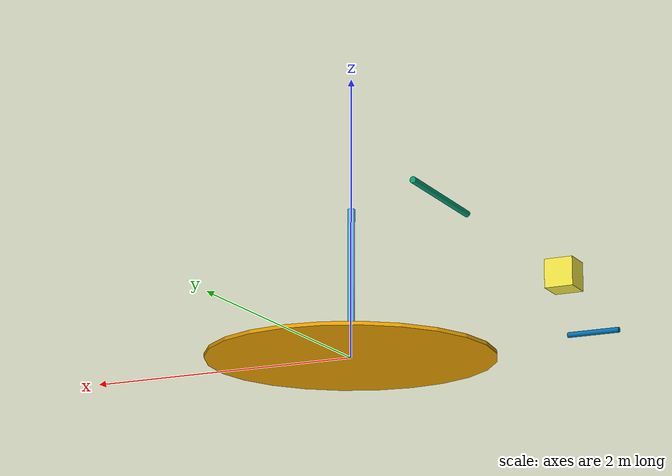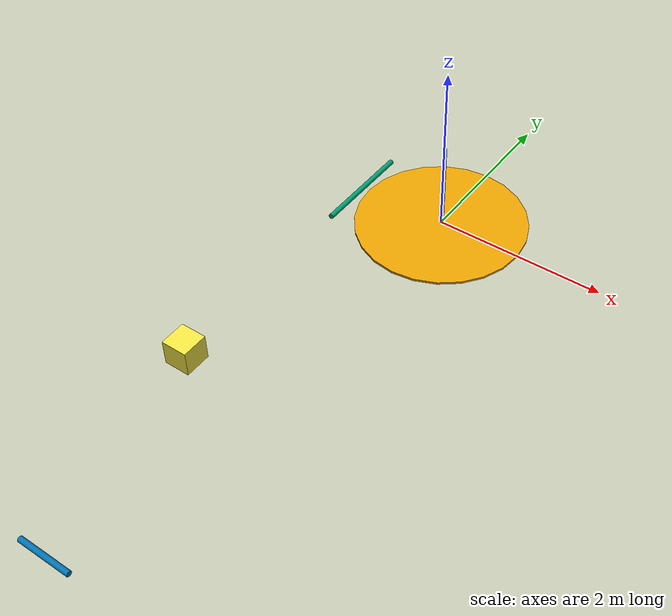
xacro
<?xml version="1.0"?>
<robot name="scara">

  <link name="base_link">
    <visual>
      <geometry>
        <cylinder length="0.025" radius="1"/>
      </geometry>
    </visual>
    <collision>
      <geometry>
        <cylinder length="0.025" radius="1"/>
      </geometry>
    </collision>
  </link>

  <transmission name="base_motor_trans">
    <type>transmission_interface/SimpleTransmission</type>
    <actuator name="base_swivel_motor">
      <mechanicalReduction>1</mechanicalReduction>
    </actuator>
    <joint name="base_to_L1">
      <hardwareInterface>hardware_interface/PositionJointInterface</hardwareInterface>
    </joint>
  </transmission>

  <joint name="base_to_L1" type="revolute">
    <parent link="base_link"/>
    <child link="L1"/>
    <axis xyz="0 0 1"/>
    <origin xyz="0 0 0.025"/>
    <limit effort="30" velocity="1.0"/>
  </joint>

  <link name="L1">
    <visual>
      <geometry>
        <cylinder length="1" radius="0.025"/>
      </geometry>
      <origin rpy="0 0 0" xyz="0 0 0.525"/>
    </visual>
    <collision>
      <geometry>
        <cylinder length="1" radius="0.025"/>
      </geometry>
    </collision>
  </link>

  <transmission name="elbow_motor_trans">
    <type>transmission_interface/SimpleTransmission</type>
    <actuator name="elbow_swivel_motor">
      <mechanicalReduction>1</mechanicalReduction>
    </actuator>
    <joint name="L1_to_L2">
      <hardwareInterface>hardware_interface/PositionJointInterface</hardwareInterface>
    </joint>
  </transmission>

  <joint name="L1_to_L2" type="revolute">
    <parent link="L1"/>
    <child link="L2"/>
    <axis xyz="1 0 0"/>
    <origin rpy="1.5707 0 0" xyz="0 0 1.525"/>
    <limit effort="30" velocity="1.0"/>
  </joint>

  <link name="L2">
    <visual>
      <geometry>
        <cylinder length="1" radius="0.025"/>
      </geometry>
      <origin rpy="0 0 0" xyz="0 0 1.525"/>
    </visual>
    <collision>
      <geometry>
        <cylinder length="1" radius="0.025"/>
      </geometry>
    </collision>
  </link>

  <joint name="L2_to_L3" type="fixed">
    <parent link="L2"/>
    <child link="L3"/>
    <origin rpy="0 0 0" xyz="0 0 2.025"/>
  </joint>

  <link name="L3">
    <visual>
      <geometry>
        <box size="0.25 0.25 0.25"/>
      </geometry>
      <origin rpy="0 0 0" xyz="0 0 2.0375"/>
    </visual>
  </link>

  <joint name="L3_to_end_effector" type="prismatic">
    <parent link="L3"/>
    <child link="end_effector"/>
    <axis xyz="1 0 0"/>
    <origin rpy="0 0 0" xyz="0.25 0 2.0375"/>
    <limit effort="30" velocity="1.0"/>
  </joint>

  <link name="end_effector">
    <visual>
      <geometry>
        <cylinder length="0.5" radius="0.025"/>
      </geometry>
      <origin rpy="0 1.5707 0" xyz="0.25 0 2.0375"/>
    </visual>
    <collision>
      <geometry>
        <cylinder length="0.5" radius="0.025"/>
      </geometry>
    </collision>
  </link>

  <gazebo>
    <plugin name="gazebo_ros_control" filename="libgazebo_ros_control.so">
      <robotNamespace>/</robotNamespace>
    </plugin>
  </gazebo>
</robot>
